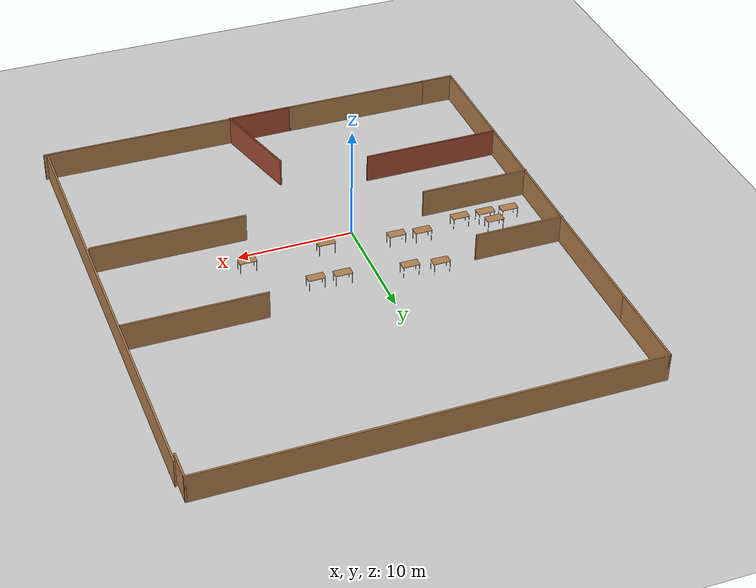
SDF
<sdf version="1.7">
 <world name="default">
  <model name="ground_plane">
   <static>1</static>
   <link name="link">
    <collision name="collision">
     <geometry><plane><normal>0 0 1</normal><size>100 100</size></plane></geometry>
     <surface>
      <contact><collide_bitmask>65535</collide_bitmask></contact>
      <friction><ode><mu>100</mu><mu2>50</mu2></ode></friction>
     </surface>
    </collision>
    <visual name="visual">
     <cast_shadows>0</cast_shadows>
     <geometry><plane><normal>0 0 1</normal><size>100 100</size></plane></geometry>
     <material>
      <script><uri>file://media/materials/scripts/gazebo.material</uri><name>Gazebo/Grey</name></script>
     </material>
    </visual>
   </link>
  </model>
  <model name="table_clone_8">
   <static>1</static>
   <link name="link">
    <collision name="surface">
     <pose>0 0 1 0 -0 0</pose>
     <geometry><box><size>1.5 0.8 0.03</size></box></geometry>
     <surface><friction><ode><mu>0.6</mu><mu2>0.6</mu2></ode></friction></surface>
    </collision>
    <visual name="visual1">
     <pose>0 0 1 0 -0 0</pose>
     <geometry><box><size>1.5 0.8 0.03</size></box></geometry>
     <material>
      <script><uri>file://media/materials/scripts/gazebo.material</uri><name>Gazebo/Wood</name></script>
     </material>
    </visual>
    <collision name="front_left_leg">
     <pose>0.68 0.38 0.5 0 -0 0</pose>
     <geometry><cylinder><radius>0.02</radius><length>1</length></cylinder></geometry>
    </collision>
    <visual name="front_left_leg">
     <pose>0.68 0.38 0.5 0 -0 0</pose>
     <geometry><cylinder><radius>0.02</radius><length>1</length></cylinder></geometry>
     <material>
      <script><uri>file://media/materials/scripts/gazebo.material</uri><name>Gazebo/Grey</name></script>
     </material>
    </visual>
    <collision name="front_right_leg">
     <pose>0.68 -0.38 0.5 0 -0 0</pose>
     <geometry><cylinder><radius>0.02</radius><length>1</length></cylinder></geometry>
    </collision>
    <visual name="front_right_leg">
     <pose>0.68 -0.38 0.5 0 -0 0</pose>
     <geometry><cylinder><radius>0.02</radius><length>1</length></cylinder></geometry>
     <material>
      <script><uri>file://media/materials/scripts/gazebo.material</uri><name>Gazebo/Grey</name></script>
     </material>
    </visual>
    <collision name="back_right_leg">
     <pose>-0.68 -0.38 0.5 0 -0 0</pose>
     <geometry><cylinder><radius>0.02</radius><length>1</length></cylinder></geometry>
    </collision>
    <visual name="back_right_leg">
     <pose>-0.68 -0.38 0.5 0 -0 0</pose>
     <geometry><cylinder><radius>0.02</radius><length>1</length></cylinder></geometry>
     <material>
      <script><uri>file://media/materials/scripts/gazebo.material</uri><name>Gazebo/Grey</name></script>
     </material>
    </visual>
    <collision name="back_left_leg">
     <pose>-0.68 0.38 0.5 0 -0 0</pose>
     <geometry><cylinder><radius>0.02</radius><length>1</length></cylinder></geometry>
    </collision>
    <visual name="back_left_leg">
     <pose>-0.68 0.38 0.5 0 -0 0</pose>
     <geometry><cylinder><radius>0.02</radius><length>1</length></cylinder></geometry>
     <material>
      <script><uri>file://media/materials/scripts/gazebo.material</uri><name>Gazebo/Grey</name></script>
     </material>
    </visual>
   </link>
   <pose>-5.22061 2.75094 0 0 -0 0</pose>
  </model>
  <model name="table_clone_9">
   <static>1</static>
   <link name="link">
    <collision name="surface">
     <pose>0 0 1 0 -0 0</pose>
     <geometry><box><size>1.5 0.8 0.03</size></box></geometry>
     <surface><friction><ode><mu>0.6</mu><mu2>0.6</mu2></ode></friction></surface>
    </collision>
    <visual name="visual1">
     <pose>0 0 1 0 -0 0</pose>
     <geometry><box><size>1.5 0.8 0.03</size></box></geometry>
     <material>
      <script><uri>file://media/materials/scripts/gazebo.material</uri><name>Gazebo/Wood</name></script>
     </material>
    </visual>
    <collision name="front_left_leg">
     <pose>0.68 0.38 0.5 0 -0 0</pose>
     <geometry><cylinder><radius>0.02</radius><length>1</length></cylinder></geometry>
    </collision>
    <visual name="front_left_leg">
     <pose>0.68 0.38 0.5 0 -0 0</pose>
     <geometry><cylinder><radius>0.02</radius><length>1</length></cylinder></geometry>
     <material>
      <script><uri>file://media/materials/scripts/gazebo.material</uri><name>Gazebo/Grey</name></script>
     </material>
    </visual>
    <collision name="front_right_leg">
     <pose>0.68 -0.38 0.5 0 -0 0</pose>
     <geometry><cylinder><radius>0.02</radius><length>1</length></cylinder></geometry>
    </collision>
    <visual name="front_right_leg">
     <pose>0.68 -0.38 0.5 0 -0 0</pose>
     <geometry><cylinder><radius>0.02</radius><length>1</length></cylinder></geometry>
     <material>
      <script><uri>file://media/materials/scripts/gazebo.material</uri><name>Gazebo/Grey</name></script>
     </material>
    </visual>
    <collision name="back_right_leg">
     <pose>-0.68 -0.38 0.5 0 -0 0</pose>
     <geometry><cylinder><radius>0.02</radius><length>1</length></cylinder></geometry>
    </collision>
    <visual name="back_right_leg">
     <pose>-0.68 -0.38 0.5 0 -0 0</pose>
     <geometry><cylinder><radius>0.02</radius><length>1</length></cylinder></geometry>
     <material>
      <script><uri>file://media/materials/scripts/gazebo.material</uri><name>Gazebo/Grey</name></script>
     </material>
    </visual>
    <collision name="back_left_leg">
     <pose>-0.68 0.38 0.5 0 -0 0</pose>
     <geometry><cylinder><radius>0.02</radius><length>1</length></cylinder></geometry>
    </collision>
    <visual name="back_left_leg">
     <pose>-0.68 0.38 0.5 0 -0 0</pose>
     <geometry><cylinder><radius>0.02</radius><length>1</length></cylinder></geometry>
     <material>
      <script><uri>file://media/materials/scripts/gazebo.material</uri><name>Gazebo/Grey</name></script>
     </material>
    </visual>
   </link>
   <pose>-2.99759 2.50603 0 0 -0 0</pose>
  </model>
  <model name="table_clone_12">
   <static>1</static>
   <link name="link">
    <collision name="surface">
     <pose>0 0 1 0 -0 0</pose>
     <geometry><box><size>1.5 0.8 0.03</size></box></geometry>
     <surface><friction><ode><mu>0.6</mu><mu2>0.6</mu2></ode></friction></surface>
    </collision>
    <visual name="visual1">
     <pose>0 0 1 0 -0 0</pose>
     <geometry><box><size>1.5 0.8 0.03</size></box></geometry>
     <material>
      <script><uri>file://media/materials/scripts/gazebo.material</uri><name>Gazebo/Wood</name></script>
     </material>
    </visual>
    <collision name="front_left_leg">
     <pose>0.68 0.38 0.5 0 -0 0</pose>
     <geometry><cylinder><radius>0.02</radius><length>1</length></cylinder></geometry>
    </collision>
    <visual name="front_left_leg">
     <pose>0.68 0.38 0.5 0 -0 0</pose>
     <geometry><cylinder><radius>0.02</radius><length>1</length></cylinder></geometry>
     <material>
      <script><uri>file://media/materials/scripts/gazebo.material</uri><name>Gazebo/Grey</name></script>
     </material>
    </visual>
    <collision name="front_right_leg">
     <pose>0.68 -0.38 0.5 0 -0 0</pose>
     <geometry><cylinder><radius>0.02</radius><length>1</length></cylinder></geometry>
    </collision>
    <visual name="front_right_leg">
     <pose>0.68 -0.38 0.5 0 -0 0</pose>
     <geometry><cylinder><radius>0.02</radius><length>1</length></cylinder></geometry>
     <material>
      <script><uri>file://media/materials/scripts/gazebo.material</uri><name>Gazebo/Grey</name></script>
     </material>
    </visual>
    <collision name="back_right_leg">
     <pose>-0.68 -0.38 0.5 0 -0 0</pose>
     <geometry><cylinder><radius>0.02</radius><length>1</length></cylinder></geometry>
    </collision>
    <visual name="back_right_leg">
     <pose>-0.68 -0.38 0.5 0 -0 0</pose>
     <geometry><cylinder><radius>0.02</radius><length>1</length></cylinder></geometry>
     <material>
      <script><uri>file://media/materials/scripts/gazebo.material</uri><name>Gazebo/Grey</name></script>
     </material>
    </visual>
    <collision name="back_left_leg">
     <pose>-0.68 0.38 0.5 0 -0 0</pose>
     <geometry><cylinder><radius>0.02</radius><length>1</length></cylinder></geometry>
    </collision>
    <visual name="back_left_leg">
     <pose>-0.68 0.38 0.5 0 -0 0</pose>
     <geometry><cylinder><radius>0.02</radius><length>1</length></cylinder></geometry>
     <material>
      <script><uri>file://media/materials/scripts/gazebo.material</uri><name>Gazebo/Grey</name></script>
     </material>
    </visual>
   </link>
   <pose>2.89121 1.63907 0 0 -0 0</pose>
  </model>
  <model name="table_clone_17">
   <static>1</static>
   <link name="link">
    <collision name="surface">
     <pose>0 0 1 0 -0 0</pose>
     <geometry><box><size>1.5 0.8 0.03</size></box></geometry>
     <surface><friction><ode><mu>0.6</mu><mu2>0.6</mu2></ode></friction></surface>
    </collision>
    <visual name="visual1">
     <pose>0 0 1 0 -0 0</pose>
     <geometry><box><size>1.5 0.8 0.03</size></box></geometry>
     <material>
      <script><uri>file://media/materials/scripts/gazebo.material</uri><name>Gazebo/Wood</name></script>
     </material>
    </visual>
    <collision name="front_left_leg">
     <pose>0.68 0.38 0.5 0 -0 0</pose>
     <geometry><cylinder><radius>0.02</radius><length>1</length></cylinder></geometry>
    </collision>
    <visual name="front_left_leg">
     <pose>0.68 0.38 0.5 0 -0 0</pose>
     <geometry><cylinder><radius>0.02</radius><length>1</length></cylinder></geometry>
     <material>
      <script><uri>file://media/materials/scripts/gazebo.material</uri><name>Gazebo/Grey</name></script>
     </material>
    </visual>
    <collision name="front_right_leg">
     <pose>0.68 -0.38 0.5 0 -0 0</pose>
     <geometry><cylinder><radius>0.02</radius><length>1</length></cylinder></geometry>
    </collision>
    <visual name="front_right_leg">
     <pose>0.68 -0.38 0.5 0 -0 0</pose>
     <geometry><cylinder><radius>0.02</radius><length>1</length></cylinder></geometry>
     <material>
      <script><uri>file://media/materials/scripts/gazebo.material</uri><name>Gazebo/Grey</name></script>
     </material>
    </visual>
    <collision name="back_right_leg">
     <pose>-0.68 -0.38 0.5 0 -0 0</pose>
     <geometry><cylinder><radius>0.02</radius><length>1</length></cylinder></geometry>
    </collision>
    <visual name="back_right_leg">
     <pose>-0.68 -0.38 0.5 0 -0 0</pose>
     <geometry><cylinder><radius>0.02</radius><length>1</length></cylinder></geometry>
     <material>
      <script><uri>file://media/materials/scripts/gazebo.material</uri><name>Gazebo/Grey</name></script>
     </material>
    </visual>
    <collision name="back_left_leg">
     <pose>-0.68 0.38 0.5 0 -0 0</pose>
     <geometry><cylinder><radius>0.02</radius><length>1</length></cylinder></geometry>
    </collision>
    <visual name="back_left_leg">
     <pose>-0.68 0.38 0.5 0 -0 0</pose>
     <geometry><cylinder><radius>0.02</radius><length>1</length></cylinder></geometry>
     <material>
      <script><uri>file://media/materials/scripts/gazebo.material</uri><name>Gazebo/Grey</name></script>
     </material>
    </visual>
   </link>
   <pose>9.71977 1.75217 0 0 -0 0</pose>
  </model>
  <model name="table_clone_18">
   <static>1</static>
   <link name="link">
    <collision name="surface">
     <pose>0 0 1 0 -0 0</pose>
     <geometry><box><size>1.5 0.8 0.03</size></box></geometry>
     <surface><friction><ode><mu>0.6</mu><mu2>0.6</mu2></ode></friction></surface>
    </collision>
    <visual name="visual1">
     <pose>0 0 1 0 -0 0</pose>
     <geometry><box><size>1.5 0.8 0.03</size></box></geometry>
     <material>
      <script><uri>file://media/materials/scripts/gazebo.material</uri><name>Gazebo/Wood</name></script>
     </material>
    </visual>
    <collision name="front_left_leg">
     <pose>0.68 0.38 0.5 0 -0 0</pose>
     <geometry><cylinder><radius>0.02</radius><length>1</length></cylinder></geometry>
    </collision>
    <visual name="front_left_leg">
     <pose>0.68 0.38 0.5 0 -0 0</pose>
     <geometry><cylinder><radius>0.02</radius><length>1</length></cylinder></geometry>
     <material>
      <script><uri>file://media/materials/scripts/gazebo.material</uri><name>Gazebo/Grey</name></script>
     </material>
    </visual>
    <collision name="front_right_leg">
     <pose>0.68 -0.38 0.5 0 -0 0</pose>
     <geometry><cylinder><radius>0.02</radius><length>1</length></cylinder></geometry>
    </collision>
    <visual name="front_right_leg">
     <pose>0.68 -0.38 0.5 0 -0 0</pose>
     <geometry><cylinder><radius>0.02</radius><length>1</length></cylinder></geometry>
     <material>
      <script><uri>file://media/materials/scripts/gazebo.material</uri><name>Gazebo/Grey</name></script>
     </material>
    </visual>
    <collision name="back_right_leg">
     <pose>-0.68 -0.38 0.5 0 -0 0</pose>
     <geometry><cylinder><radius>0.02</radius><length>1</length></cylinder></geometry>
    </collision>
    <visual name="back_right_leg">
     <pose>-0.68 -0.38 0.5 0 -0 0</pose>
     <geometry><cylinder><radius>0.02</radius><length>1</length></cylinder></geometry>
     <material>
      <script><uri>file://media/materials/scripts/gazebo.material</uri><name>Gazebo/Grey</name></script>
     </material>
    </visual>
    <collision name="back_left_leg">
     <pose>-0.68 0.38 0.5 0 -0 0</pose>
     <geometry><cylinder><radius>0.02</radius><length>1</length></cylinder></geometry>
    </collision>
    <visual name="back_left_leg">
     <pose>-0.68 0.38 0.5 0 -0 0</pose>
     <geometry><cylinder><radius>0.02</radius><length>1</length></cylinder></geometry>
     <material>
      <script><uri>file://media/materials/scripts/gazebo.material</uri><name>Gazebo/Grey</name></script>
     </material>
    </visual>
   </link>
   <pose>-8.92364 1.97409 0 0 -0 0</pose>
  </model>
  <model name="table_clone_19">
   <static>1</static>
   <link name="link">
    <collision name="surface">
     <pose>0 0 1 0 -0 0</pose>
     <geometry><box><size>1.5 0.8 0.03</size></box></geometry>
     <surface><friction><ode><mu>0.6</mu><mu2>0.6</mu2></ode></friction></surface>
    </collision>
    <visual name="visual1">
     <pose>0 0 1 0 -0 0</pose>
     <geometry><box><size>1.5 0.8 0.03</size></box></geometry>
     <material>
      <script><uri>file://media/materials/scripts/gazebo.material</uri><name>Gazebo/Wood</name></script>
     </material>
    </visual>
    <collision name="front_left_leg">
     <pose>0.68 0.38 0.5 0 -0 0</pose>
     <geometry><cylinder><radius>0.02</radius><length>1</length></cylinder></geometry>
    </collision>
    <visual name="front_left_leg">
     <pose>0.68 0.38 0.5 0 -0 0</pose>
     <geometry><cylinder><radius>0.02</radius><length>1</length></cylinder></geometry>
     <material>
      <script><uri>file://media/materials/scripts/gazebo.material</uri><name>Gazebo/Grey</name></script>
     </material>
    </visual>
    <collision name="front_right_leg">
     <pose>0.68 -0.38 0.5 0 -0 0</pose>
     <geometry><cylinder><radius>0.02</radius><length>1</length></cylinder></geometry>
    </collision>
    <visual name="front_right_leg">
     <pose>0.68 -0.38 0.5 0 -0 0</pose>
     <geometry><cylinder><radius>0.02</radius><length>1</length></cylinder></geometry>
     <material>
      <script><uri>file://media/materials/scripts/gazebo.material</uri><name>Gazebo/Grey</name></script>
     </material>
    </visual>
    <collision name="back_right_leg">
     <pose>-0.68 -0.38 0.5 0 -0 0</pose>
     <geometry><cylinder><radius>0.02</radius><length>1</length></cylinder></geometry>
    </collision>
    <visual name="back_right_leg">
     <pose>-0.68 -0.38 0.5 0 -0 0</pose>
     <geometry><cylinder><radius>0.02</radius><length>1</length></cylinder></geometry>
     <material>
      <script><uri>file://media/materials/scripts/gazebo.material</uri><name>Gazebo/Grey</name></script>
     </material>
    </visual>
    <collision name="back_left_leg">
     <pose>-0.68 0.38 0.5 0 -0 0</pose>
     <geometry><cylinder><radius>0.02</radius><length>1</length></cylinder></geometry>
    </collision>
    <visual name="back_left_leg">
     <pose>-0.68 0.38 0.5 0 -0 0</pose>
     <geometry><cylinder><radius>0.02</radius><length>1</length></cylinder></geometry>
     <material>
      <script><uri>file://media/materials/scripts/gazebo.material</uri><name>Gazebo/Grey</name></script>
     </material>
    </visual>
   </link>
   <pose>-11.2035 2.07114 0 0 -0 0</pose>
  </model>
  <model name="table_clone_20">
   <static>1</static>
   <link name="link">
    <collision name="surface">
     <pose>0 0 1 0 -0 0</pose>
     <geometry><box><size>1.5 0.8 0.03</size></box></geometry>
     <surface><friction><ode><mu>0.6</mu><mu2>0.6</mu2></ode></friction></surface>
    </collision>
    <visual name="visual1">
     <pose>0 0 1 0 -0 0</pose>
     <geometry><box><size>1.5 0.8 0.03</size></box></geometry>
     <material>
      <script><uri>file://media/materials/scripts/gazebo.material</uri><name>Gazebo/Wood</name></script>
     </material>
    </visual>
    <collision name="front_left_leg">
     <pose>0.68 0.38 0.5 0 -0 0</pose>
     <geometry><cylinder><radius>0.02</radius><length>1</length></cylinder></geometry>
    </collision>
    <visual name="front_left_leg">
     <pose>0.68 0.38 0.5 0 -0 0</pose>
     <geometry><cylinder><radius>0.02</radius><length>1</length></cylinder></geometry>
     <material>
      <script><uri>file://media/materials/scripts/gazebo.material</uri><name>Gazebo/Grey</name></script>
     </material>
    </visual>
    <collision name="front_right_leg">
     <pose>0.68 -0.38 0.5 0 -0 0</pose>
     <geometry><cylinder><radius>0.02</radius><length>1</length></cylinder></geometry>
    </collision>
    <visual name="front_right_leg">
     <pose>0.68 -0.38 0.5 0 -0 0</pose>
     <geometry><cylinder><radius>0.02</radius><length>1</length></cylinder></geometry>
     <material>
      <script><uri>file://media/materials/scripts/gazebo.material</uri><name>Gazebo/Grey</name></script>
     </material>
    </visual>
    <collision name="back_right_leg">
     <pose>-0.68 -0.38 0.5 0 -0 0</pose>
     <geometry><cylinder><radius>0.02</radius><length>1</length></cylinder></geometry>
    </collision>
    <visual name="back_right_leg">
     <pose>-0.68 -0.38 0.5 0 -0 0</pose>
     <geometry><cylinder><radius>0.02</radius><length>1</length></cylinder></geometry>
     <material>
      <script><uri>file://media/materials/scripts/gazebo.material</uri><name>Gazebo/Grey</name></script>
     </material>
    </visual>
    <collision name="back_left_leg">
     <pose>-0.68 0.38 0.5 0 -0 0</pose>
     <geometry><cylinder><radius>0.02</radius><length>1</length></cylinder></geometry>
    </collision>
    <visual name="back_left_leg">
     <pose>-0.68 0.38 0.5 0 -0 0</pose>
     <geometry><cylinder><radius>0.02</radius><length>1</length></cylinder></geometry>
     <material>
      <script><uri>file://media/materials/scripts/gazebo.material</uri><name>Gazebo/Grey</name></script>
     </material>
    </visual>
   </link>
   <pose>-13.2681 2.24295 0 0 -0 0</pose>
  </model>
  <model name="table_clone_21">
   <static>1</static>
   <link name="link">
    <collision name="surface">
     <pose>0 0 1 0 -0 0</pose>
     <geometry><box><size>1.5 0.8 0.03</size></box></geometry>
     <surface><friction><ode><mu>0.6</mu><mu2>0.6</mu2></ode></friction></surface>
    </collision>
    <visual name="visual1">
     <pose>0 0 1 0 -0 0</pose>
     <geometry><box><size>1.5 0.8 0.03</size></box></geometry>
     <material>
      <script><uri>file://media/materials/scripts/gazebo.material</uri><name>Gazebo/Wood</name></script>
     </material>
    </visual>
    <collision name="front_left_leg">
     <pose>0.68 0.38 0.5 0 -0 0</pose>
     <geometry><cylinder><radius>0.02</radius><length>1</length></cylinder></geometry>
    </collision>
    <visual name="front_left_leg">
     <pose>0.68 0.38 0.5 0 -0 0</pose>
     <geometry><cylinder><radius>0.02</radius><length>1</length></cylinder></geometry>
     <material>
      <script><uri>file://media/materials/scripts/gazebo.material</uri><name>Gazebo/Grey</name></script>
     </material>
    </visual>
    <collision name="front_right_leg">
     <pose>0.68 -0.38 0.5 0 -0 0</pose>
     <geometry><cylinder><radius>0.02</radius><length>1</length></cylinder></geometry>
    </collision>
    <visual name="front_right_leg">
     <pose>0.68 -0.38 0.5 0 -0 0</pose>
     <geometry><cylinder><radius>0.02</radius><length>1</length></cylinder></geometry>
     <material>
      <script><uri>file://media/materials/scripts/gazebo.material</uri><name>Gazebo/Grey</name></script>
     </material>
    </visual>
    <collision name="back_right_leg">
     <pose>-0.68 -0.38 0.5 0 -0 0</pose>
     <geometry><cylinder><radius>0.02</radius><length>1</length></cylinder></geometry>
    </collision>
    <visual name="back_right_leg">
     <pose>-0.68 -0.38 0.5 0 -0 0</pose>
     <geometry><cylinder><radius>0.02</radius><length>1</length></cylinder></geometry>
     <material>
      <script><uri>file://media/materials/scripts/gazebo.material</uri><name>Gazebo/Grey</name></script>
     </material>
    </visual>
    <collision name="back_left_leg">
     <pose>-0.68 0.38 0.5 0 -0 0</pose>
     <geometry><cylinder><radius>0.02</radius><length>1</length></cylinder></geometry>
    </collision>
    <visual name="back_left_leg">
     <pose>-0.68 0.38 0.5 0 -0 0</pose>
     <geometry><cylinder><radius>0.02</radius><length>1</length></cylinder></geometry>
     <material>
      <script><uri>file://media/materials/scripts/gazebo.material</uri><name>Gazebo/Grey</name></script>
     </material>
    </visual>
   </link>
   <pose>-11.4961 3.29245 0 0 -0 0</pose>
  </model>
  <model name="table_clone_22">
   <static>1</static>
   <link name="link">
    <collision name="surface">
     <pose>0 0 1 0 -0 0</pose>
     <geometry><box><size>1.5 0.8 0.03</size></box></geometry>
     <surface><friction><ode><mu>0.6</mu><mu2>0.6</mu2></ode></friction></surface>
    </collision>
    <visual name="visual1">
     <pose>0 0 1 0 -0 0</pose>
     <geometry><box><size>1.5 0.8 0.03</size></box></geometry>
     <material>
      <script><uri>file://media/materials/scripts/gazebo.material</uri><name>Gazebo/Wood</name></script>
     </material>
    </visual>
    <collision name="front_left_leg">
     <pose>0.68 0.38 0.5 0 -0 0</pose>
     <geometry><cylinder><radius>0.02</radius><length>1</length></cylinder></geometry>
    </collision>
    <visual name="front_left_leg">
     <pose>0.68 0.38 0.5 0 -0 0</pose>
     <geometry><cylinder><radius>0.02</radius><length>1</length></cylinder></geometry>
     <material>
      <script><uri>file://media/materials/scripts/gazebo.material</uri><name>Gazebo/Grey</name></script>
     </material>
    </visual>
    <collision name="front_right_leg">
     <pose>0.68 -0.38 0.5 0 -0 0</pose>
     <geometry><cylinder><radius>0.02</radius><length>1</length></cylinder></geometry>
    </collision>
    <visual name="front_right_leg">
     <pose>0.68 -0.38 0.5 0 -0 0</pose>
     <geometry><cylinder><radius>0.02</radius><length>1</length></cylinder></geometry>
     <material>
      <script><uri>file://media/materials/scripts/gazebo.material</uri><name>Gazebo/Grey</name></script>
     </material>
    </visual>
    <collision name="back_right_leg">
     <pose>-0.68 -0.38 0.5 0 -0 0</pose>
     <geometry><cylinder><radius>0.02</radius><length>1</length></cylinder></geometry>
    </collision>
    <visual name="back_right_leg">
     <pose>-0.68 -0.38 0.5 0 -0 0</pose>
     <geometry><cylinder><radius>0.02</radius><length>1</length></cylinder></geometry>
     <material>
      <script><uri>file://media/materials/scripts/gazebo.material</uri><name>Gazebo/Grey</name></script>
     </material>
    </visual>
    <collision name="back_left_leg">
     <pose>-0.68 0.38 0.5 0 -0 0</pose>
     <geometry><cylinder><radius>0.02</radius><length>1</length></cylinder></geometry>
    </collision>
    <visual name="back_left_leg">
     <pose>-0.68 0.38 0.5 0 -0 0</pose>
     <geometry><cylinder><radius>0.02</radius><length>1</length></cylinder></geometry>
     <material>
      <script><uri>file://media/materials/scripts/gazebo.material</uri><name>Gazebo/Grey</name></script>
     </material>
    </visual>
   </link>
   <pose>2.96541 5.88715 0 0 -0 0</pose>
  </model>
  <model name="table_clone_25">
   <static>1</static>
   <link name="link">
    <collision name="surface">
     <pose>0 0 1 0 -0 0</pose>
     <geometry><box><size>1.5 0.8 0.03</size></box></geometry>
     <surface><friction><ode><mu>0.6</mu><mu2>0.6</mu2></ode></friction></surface>
    </collision>
    <visual name="visual1">
     <pose>0 0 1 0 -0 0</pose>
     <geometry><box><size>1.5 0.8 0.03</size></box></geometry>
     <material>
      <script><uri>file://media/materials/scripts/gazebo.material</uri><name>Gazebo/Wood</name></script>
     </material>
    </visual>
    <collision name="front_left_leg">
     <pose>0.68 0.38 0.5 0 -0 0</pose>
     <geometry><cylinder><radius>0.02</radius><length>1</length></cylinder></geometry>
    </collision>
    <visual name="front_left_leg">
     <pose>0.68 0.38 0.5 0 -0 0</pose>
     <geometry><cylinder><radius>0.02</radius><length>1</length></cylinder></geometry>
     <material>
      <script><uri>file://media/materials/scripts/gazebo.material</uri><name>Gazebo/Grey</name></script>
     </material>
    </visual>
    <collision name="front_right_leg">
     <pose>0.68 -0.38 0.5 0 -0 0</pose>
     <geometry><cylinder><radius>0.02</radius><length>1</length></cylinder></geometry>
    </collision>
    <visual name="front_right_leg">
     <pose>0.68 -0.38 0.5 0 -0 0</pose>
     <geometry><cylinder><radius>0.02</radius><length>1</length></cylinder></geometry>
     <material>
      <script><uri>file://media/materials/scripts/gazebo.material</uri><name>Gazebo/Grey</name></script>
     </material>
    </visual>
    <collision name="back_right_leg">
     <pose>-0.68 -0.38 0.5 0 -0 0</pose>
     <geometry><cylinder><radius>0.02</radius><length>1</length></cylinder></geometry>
    </collision>
    <visual name="back_right_leg">
     <pose>-0.68 -0.38 0.5 0 -0 0</pose>
     <geometry><cylinder><radius>0.02</radius><length>1</length></cylinder></geometry>
     <material>
      <script><uri>file://media/materials/scripts/gazebo.material</uri><name>Gazebo/Grey</name></script>
     </material>
    </visual>
    <collision name="back_left_leg">
     <pose>-0.68 0.38 0.5 0 -0 0</pose>
     <geometry><cylinder><radius>0.02</radius><length>1</length></cylinder></geometry>
    </collision>
    <visual name="back_left_leg">
     <pose>-0.68 0.38 0.5 0 -0 0</pose>
     <geometry><cylinder><radius>0.02</radius><length>1</length></cylinder></geometry>
     <material>
      <script><uri>file://media/materials/scripts/gazebo.material</uri><name>Gazebo/Grey</name></script>
     </material>
    </visual>
   </link>
   <pose>5.21849 5.72784 0 0 -0 0</pose>
  </model>
  <model name="table_clone_28">
   <static>1</static>
   <link name="link">
    <collision name="surface">
     <pose>0 0 1 0 -0 0</pose>
     <geometry><box><size>1.5 0.8 0.03</size></box></geometry>
     <surface><friction><ode><mu>0.6</mu><mu2>0.6</mu2></ode></friction></surface>
    </collision>
    <visual name="visual1">
     <pose>0 0 1 0 -0 0</pose>
     <geometry><box><size>1.5 0.8 0.03</size></box></geometry>
     <material>
      <script><uri>file://media/materials/scripts/gazebo.material</uri><name>Gazebo/Wood</name></script>
     </material>
    </visual>
    <collision name="front_left_leg">
     <pose>0.68 0.38 0.5 0 -0 0</pose>
     <geometry><cylinder><radius>0.02</radius><length>1</length></cylinder></geometry>
    </collision>
    <visual name="front_left_leg">
     <pose>0.68 0.38 0.5 0 -0 0</pose>
     <geometry><cylinder><radius>0.02</radius><length>1</length></cylinder></geometry>
     <material>
      <script><uri>file://media/materials/scripts/gazebo.material</uri><name>Gazebo/Grey</name></script>
     </material>
    </visual>
    <collision name="front_right_leg">
     <pose>0.68 -0.38 0.5 0 -0 0</pose>
     <geometry><cylinder><radius>0.02</radius><length>1</length></cylinder></geometry>
    </collision>
    <visual name="front_right_leg">
     <pose>0.68 -0.38 0.5 0 -0 0</pose>
     <geometry><cylinder><radius>0.02</radius><length>1</length></cylinder></geometry>
     <material>
      <script><uri>file://media/materials/scripts/gazebo.material</uri><name>Gazebo/Grey</name></script>
     </material>
    </visual>
    <collision name="back_right_leg">
     <pose>-0.68 -0.38 0.5 0 -0 0</pose>
     <geometry><cylinder><radius>0.02</radius><length>1</length></cylinder></geometry>
    </collision>
    <visual name="back_right_leg">
     <pose>-0.68 -0.38 0.5 0 -0 0</pose>
     <geometry><cylinder><radius>0.02</radius><length>1</length></cylinder></geometry>
     <material>
      <script><uri>file://media/materials/scripts/gazebo.material</uri><name>Gazebo/Grey</name></script>
     </material>
    </visual>
    <collision name="back_left_leg">
     <pose>-0.68 0.38 0.5 0 -0 0</pose>
     <geometry><cylinder><radius>0.02</radius><length>1</length></cylinder></geometry>
    </collision>
    <visual name="back_left_leg">
     <pose>-0.68 0.38 0.5 0 -0 0</pose>
     <geometry><cylinder><radius>0.02</radius><length>1</length></cylinder></geometry>
     <material>
      <script><uri>file://media/materials/scripts/gazebo.material</uri><name>Gazebo/Grey</name></script>
     </material>
    </visual>
   </link>
   <pose>-5.03425 7.12411 0 0 -0 0</pose>
  </model>
  <model name="table_clone_31">
   <static>1</static>
   <link name="link">
    <collision name="surface">
     <pose>0 0 1 0 -0 0</pose>
     <geometry><box><size>1.5 0.8 0.03</size></box></geometry>
     <surface><friction><ode><mu>0.6</mu><mu2>0.6</mu2></ode></friction></surface>
    </collision>
    <visual name="visual1">
     <pose>0 0 1 0 -0 0</pose>
     <geometry><box><size>1.5 0.8 0.03</size></box></geometry>
     <material>
      <script><uri>file://media/materials/scripts/gazebo.material</uri><name>Gazebo/Wood</name></script>
     </material>
    </visual>
    <collision name="front_left_leg">
     <pose>0.68 0.38 0.5 0 -0 0</pose>
     <geometry><cylinder><radius>0.02</radius><length>1</length></cylinder></geometry>
    </collision>
    <visual name="front_left_leg">
     <pose>0.68 0.38 0.5 0 -0 0</pose>
     <geometry><cylinder><radius>0.02</radius><length>1</length></cylinder></geometry>
     <material>
      <script><uri>file://media/materials/scripts/gazebo.material</uri><name>Gazebo/Grey</name></script>
     </material>
    </visual>
    <collision name="front_right_leg">
     <pose>0.68 -0.38 0.5 0 -0 0</pose>
     <geometry><cylinder><radius>0.02</radius><length>1</length></cylinder></geometry>
    </collision>
    <visual name="front_right_leg">
     <pose>0.68 -0.38 0.5 0 -0 0</pose>
     <geometry><cylinder><radius>0.02</radius><length>1</length></cylinder></geometry>
     <material>
      <script><uri>file://media/materials/scripts/gazebo.material</uri><name>Gazebo/Grey</name></script>
     </material>
    </visual>
    <collision name="back_right_leg">
     <pose>-0.68 -0.38 0.5 0 -0 0</pose>
     <geometry><cylinder><radius>0.02</radius><length>1</length></cylinder></geometry>
    </collision>
    <visual name="back_right_leg">
     <pose>-0.68 -0.38 0.5 0 -0 0</pose>
     <geometry><cylinder><radius>0.02</radius><length>1</length></cylinder></geometry>
     <material>
      <script><uri>file://media/materials/scripts/gazebo.material</uri><name>Gazebo/Grey</name></script>
     </material>
    </visual>
    <collision name="back_left_leg">
     <pose>-0.68 0.38 0.5 0 -0 0</pose>
     <geometry><cylinder><radius>0.02</radius><length>1</length></cylinder></geometry>
    </collision>
    <visual name="back_left_leg">
     <pose>-0.68 0.38 0.5 0 -0 0</pose>
     <geometry><cylinder><radius>0.02</radius><length>1</length></cylinder></geometry>
     <material>
      <script><uri>file://media/materials/scripts/gazebo.material</uri><name>Gazebo/Grey</name></script>
     </material>
    </visual>
   </link>
   <pose>-2.52669 6.68867 0 0 -0 0</pose>
  </model>
  <model name="my_building">
   <pose>3.1488 4.36367 0 0 -0 0</pose>
   <link name="Door_2">
    <collision name="Door_2_Collision">
     <geometry><box><size>0.9 0.17 2</size></box></geometry>
     <pose>0 0 1 0 -0 0</pose>
    </collision>
    <visual name="Door_2_Visual">
     <pose>0 0 1 0 -0 0</pose>
     <geometry><box><size>0.9 0.17 2</size></box></geometry>
     <material>
      <script><uri>file://media/materials/scripts/gazebo.material</uri><name>Gazebo/Grey</name></script>
     </material>
    </visual>
    <pose>-2.64212 -21.0058 0 0 -0 0</pose>
   </link>
   <link name="Wall_14">
    <collision name="Wall_14_Collision">
     <geometry><box><size>7.75 0.15 2.5</size></box></geometry>
     <pose>0 0 1.25 0 -0 0</pose>
    </collision>
    <visual name="Wall_14_Visual">
     <pose>0 0 1.25 0 -0 0</pose>
     <geometry><box><size>7.75 0.15 2.5</size></box></geometry>
     <material>
      <script><uri>file://media/materials/scripts/gazebo.material</uri><name>Gazebo/Wood</name></script>
      <ambient>1 1 1 1</ambient>
     </material>
     <meta><layer>0</layer></meta>
    </visual>
    <pose>-15.2748 2.42523 0 0 -0 0</pose>
   </link>
   <link name="Wall_16">
    <collision name="Wall_16_Collision">
     <geometry><box><size>9.5 0.15 2.5</size></box></geometry>
     <pose>0 0 1.25 0 -0 0</pose>
    </collision>
    <visual name="Wall_16_Visual">
     <pose>0 0 1.25 0 -0 0</pose>
     <geometry><box><size>9.5 0.15 2.5</size></box></geometry>
     <material>
      <script><uri>file://media/materials/scripts/gazebo.material</uri><name>Gazebo/Wood</name></script>
      <ambient>1 1 1 1</ambient>
     </material>
     <meta><layer>0</layer></meta>
    </visual>
    <pose>-14.3998 -4.68656 0 0 -0 0</pose>
   </link>
   <link name="Wall_18">
    <collision name="Wall_18_Collision">
     <geometry><box><size>40 0.15 2.5</size></box></geometry>
     <pose>0 0 1.25 0 -0 0</pose>
    </collision>
    <visual name="Wall_18_Visual">
     <pose>0 0 1.25 0 -0 0</pose>
     <geometry><box><size>40 0.15 2.5</size></box></geometry>
     <material>
      <script><uri>file://media/materials/scripts/gazebo.material</uri><name>Gazebo/Wood</name></script>
      <ambient>1 1 1 1</ambient>
     </material>
     <meta><layer>0</layer></meta>
    </visual>
    <pose>18.8236 -0.669515 0 0 -0 1.5708</pose>
   </link>
   <link name="Wall_21">
    <collision name="Wall_21_Collision">
     <geometry><box><size>13.25 0.15 2.5</size></box></geometry>
     <pose>0 0 1.25 0 -0 0</pose>
    </collision>
    <visual name="Wall_21_Visual">
     <pose>0 0 1.25 0 -0 0</pose>
     <geometry><box><size>13.25 0.15 2.5</size></box></geometry>
     <material>
      <script><uri>file://media/materials/scripts/gazebo.material</uri><name>Gazebo/Wood</name></script>
      <ambient>1 1 1 1</ambient>
     </material>
     <meta><layer>0</layer></meta>
    </visual>
    <pose>11.9929 -6.55808 0 0 -0 3.14159</pose>
   </link>
   <link name="Wall_23">
    <collision name="Wall_23_Collision">
     <geometry><box><size>12 0.15 2.5</size></box></geometry>
     <pose>0 0 1.25 0 -0 0</pose>
    </collision>
    <visual name="Wall_23_Visual">
     <pose>0 0 1.25 0 -0 0</pose>
     <geometry><box><size>12 0.15 2.5</size></box></geometry>
     <material>
      <script><uri>file://media/materials/scripts/gazebo.material</uri><name>Gazebo/Wood</name></script>
      <ambient>1 1 1 1</ambient>
     </material>
     <meta><layer>0</layer></meta>
    </visual>
    <pose>12.7115 3.7353 0 0 -0 3.14159</pose>
   </link>
   <link name="Wall_25">
    <collision name="Wall_25_Collision">
     <geometry><box><size>7.5 0.15 2.5</size></box></geometry>
     <pose>0 0 1.25 0 -0 0</pose>
    </collision>
    <visual name="Wall_25_Visual">
     <pose>0 0 1.25 0 -0 0</pose>
     <geometry><box><size>7.5 0.15 2.5</size></box></geometry>
     <material>
      <script><uri>file://media/materials/scripts/gazebo.material</uri><name>Gazebo/Wood</name></script>
      <ambient>1 1 1 1</ambient>
     </material>
     <meta><layer>0</layer></meta>
    </visual>
    <pose>-19.0221 17.3084 0 0 -0 1.5708</pose>
   </link>
   <link name="Wall_26">
    <collision name="Wall_26_Collision">
     <geometry><box><size>37.75 0.15 2.5</size></box></geometry>
     <pose>0 0 1.25 0 -0 0</pose>
    </collision>
    <visual name="Wall_26_Visual">
     <pose>0 0 1.25 0 -0 0</pose>
     <geometry><box><size>37.75 0.15 2.5</size></box></geometry>
     <material>
      <script><uri>file://media/materials/scripts/gazebo.material</uri><name>Gazebo/Wood</name></script>
      <ambient>1 1 1 1</ambient>
     </material>
     <meta><layer>0</layer></meta>
    </visual>
    <pose>-0.222073 20.9834 0 0 -0 0</pose>
   </link>
   <link name="Wall_27">
    <collision name="Wall_27_Collision">
     <geometry><box><size>2.5 0.15 2.5</size></box></geometry>
     <pose>0 0 1.25 0 -0 0</pose>
    </collision>
    <visual name="Wall_27_Visual">
     <pose>0 0 1.25 0 -0 0</pose>
     <geometry><box><size>2.5 0.15 2.5</size></box></geometry>
     <material>
      <script><uri>file://media/materials/scripts/gazebo.material</uri><name>Gazebo/Wood</name></script>
      <ambient>1 1 1 1</ambient>
     </material>
     <meta><layer>0</layer></meta>
    </visual>
    <pose>18.5779 19.8084 0 0 -0 -1.5708</pose>
   </link>
   <link name="Wall_29">
    <collision name="Wall_29_Collision">
     <geometry><box><size>5.75 0.15 2.5</size></box></geometry>
     <pose>0 0 1.25 0 -0 0</pose>
    </collision>
    <visual name="Wall_29_Visual">
     <pose>0 0 1.25 0 -0 0</pose>
     <geometry><box><size>5.75 0.15 2.5</size></box></geometry>
     <material>
      <script><uri>file://media/materials/scripts/gazebo.material</uri><name>Gazebo/Bricks</name></script>
      <ambient>1 1 1 1</ambient>
     </material>
     <meta><layer>0</layer></meta>
    </visual>
    <pose>-0.522073 -20.9666 0 0 -0 0</pose>
   </link>
   <link name="Wall_3">
    <collision name="Wall_3_Collision">
     <geometry><box><size>13 0.15 2.5</size></box></geometry>
     <pose>0 0 1.25 0 -0 0</pose>
    </collision>
    <visual name="Wall_3_Visual">
     <pose>0 0 1.25 0 -0 0</pose>
     <geometry><box><size>13 0.15 2.5</size></box></geometry>
     <material>
      <script><uri>file://media/materials/scripts/gazebo.material</uri><name>Gazebo/Wood</name></script>
      <ambient>1 1 1 1</ambient>
     </material>
     <meta><layer>0</layer></meta>
    </visual>
    <pose>-9.74707 -20.9666 0 0 -0 0</pose>
   </link>
   <link name="Wall_30">
    <collision name="Wall_30_Collision">
     <geometry><box><size>8.25 0.15 2.5</size></box></geometry>
     <pose>0 0 1.25 0 -0 0</pose>
    </collision>
    <visual name="Wall_30_Visual">
     <pose>0 0 1.25 0 -0 0</pose>
     <geometry><box><size>8.25 0.15 2.5</size></box></geometry>
     <material>
      <script><uri>file://media/materials/scripts/gazebo.material</uri><name>Gazebo/Bricks</name></script>
      <ambient>1 1 1 1</ambient>
     </material>
     <meta><layer>0</layer></meta>
    </visual>
    <pose>1.22971 -17.0546 0 0 -0 1.8326</pose>
   </link>
   <link name="Wall_32">
    <collision name="Wall_32_Collision">
     <geometry><box><size>12 0.15 2.5</size></box></geometry>
     <pose>0 0 1.25 0 -0 0</pose>
    </collision>
    <visual name="Wall_32_Visual">
     <pose>0 0 1.25 0 -0 0</pose>
     <geometry><box><size>12 0.15 2.5</size></box></geometry>
     <material>
      <script><uri>file://media/materials/scripts/gazebo.material</uri><name>Gazebo/Bricks</name></script>
      <ambient>1 1 1 1</ambient>
     </material>
     <meta><layer>0</layer></meta>
    </visual>
    <pose>-13.0845 -11.1755 0 0 -0 3.14159</pose>
   </link>
   <link name="Wall_5">
    <collision name="Wall_5_Collision">
     <geometry><box><size>17 0.15 2.5</size></box></geometry>
     <pose>0 0 1.25 0 -0 0</pose>
    </collision>
    <visual name="Wall_5_Visual">
     <pose>0 0 1.25 0 -0 0</pose>
     <geometry><box><size>17 0.15 2.5</size></box></geometry>
     <material>
      <script><uri>file://media/materials/scripts/gazebo.material</uri><name>Gazebo/Wood</name></script>
      <ambient>1 1 1 1</ambient>
     </material>
     <meta><layer>0</layer></meta>
    </visual>
    <pose>10.6498 -20.8958 0 0 -0 0</pose>
   </link>
   <link name="Wall_7">
    <collision name="Wall_7_Collision">
     <geometry><box><size>3 0.15 2.5</size></box></geometry>
     <pose>0 0 1.25 0 -0 0</pose>
    </collision>
    <visual name="Wall_7_Visual">
     <pose>0 0 1.25 0 -0 0</pose>
     <geometry><box><size>3 0.15 2.5</size></box></geometry>
     <material>
      <script><uri>file://media/materials/scripts/gazebo.material</uri><name>Gazebo/Wood</name></script>
      <ambient>1 1 1 1</ambient>
     </material>
     <meta><layer>0</layer></meta>
    </visual>
    <pose>-17.5971 -20.9666 0 0 -0 3.14159</pose>
   </link>
   <link name="Wall_9">
    <collision name="Wall_9_Collision">
     <geometry><box><size>34.75 0.15 2.5</size></box></geometry>
     <pose>0 0 1.25 0 -0 0</pose>
    </collision>
    <visual name="Wall_9_Visual">
     <pose>0 0 1.25 0 -0 0</pose>
     <geometry><box><size>34.75 0.15 2.5</size></box></geometry>
     <material>
      <script><uri>file://media/materials/scripts/gazebo.material</uri><name>Gazebo/Wood</name></script>
      <ambient>1 1 1 1</ambient>
     </material>
     <meta><layer>0</layer></meta>
    </visual>
    <pose>-19.0221 -3.66657 0 0 -0 1.5708</pose>
   </link>
   <static>1</static>
  </model>
 </world>
</sdf>
